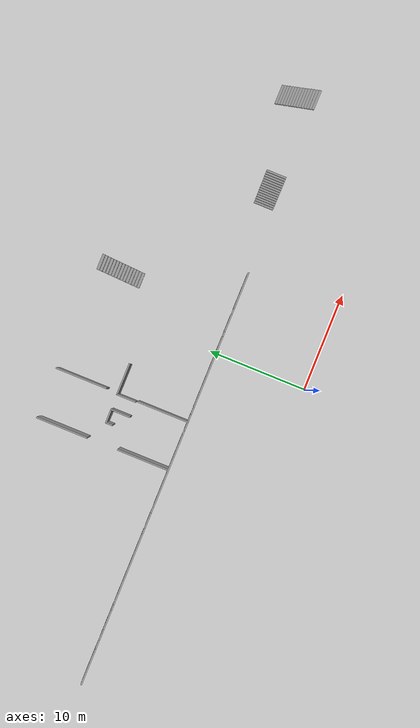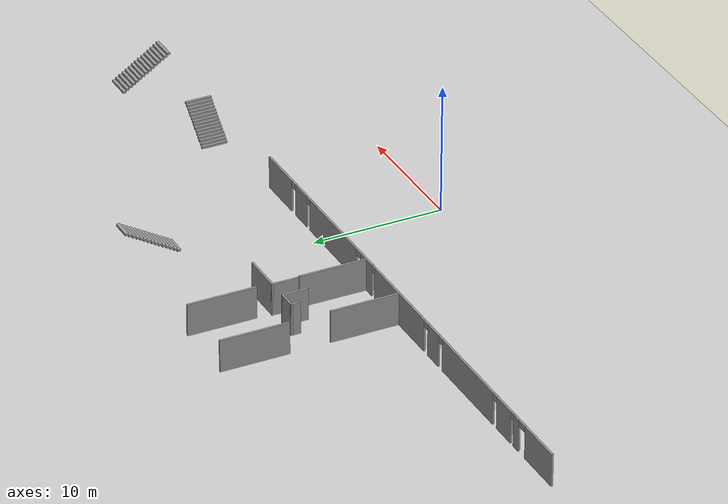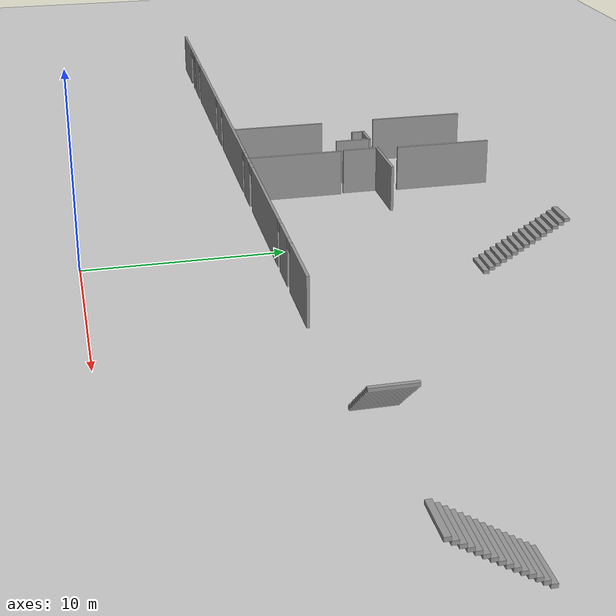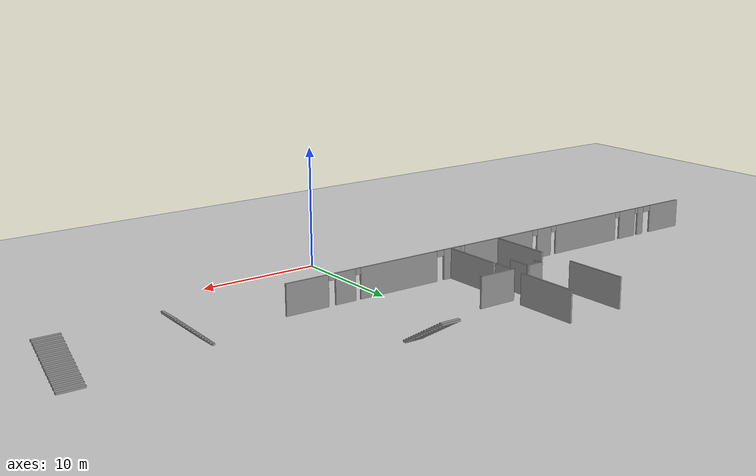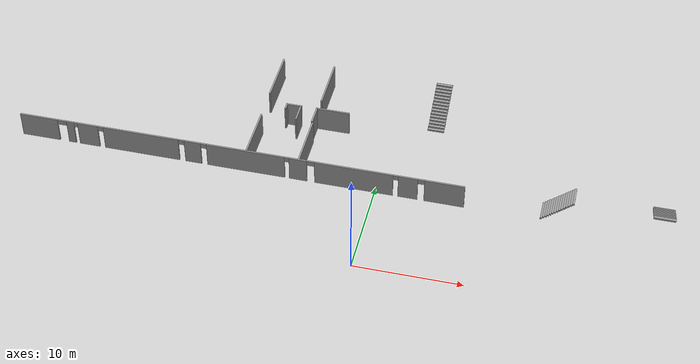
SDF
<sdf version="1.6">
 <world name="default">
  <model name="ground_plane">
   <static>1</static>
   <link name="link">
    <collision name="collision">
     <geometry><plane><normal>0 0 1</normal><size>100 100</size></plane></geometry>
     <surface><friction><ode><mu>100</mu><mu2>50</mu2></ode></friction></surface>
    </collision>
    <visual name="visual">
     <cast_shadows>0</cast_shadows>
     <geometry><plane><normal>0 0 1</normal><size>100 100</size></plane></geometry>
     <material>
      <script><uri>file://media/materials/scripts/gazebo.material</uri><name>Gazebo/Grey</name></script>
     </material>
    </visual>
   </link>
  </model>
  <model name="se1floor1">
   <pose>-5.19256 -0.852459 0 0 -0 0</pose>
   <link name="Stairs_0">
    <visual name="Stairs_0_Visual_0">
     <pose>31.172 14.058 0.083333 0 -0 0</pose>
     <geometry><box><size>1.96304 0.254734 0.166667</size></box></geometry>
     <material>
      <script><uri>file://media/materials/scripts/gazebo.material</uri><name>Gazebo/Grey</name></script>
      <ambient>1 1 1 1</ambient>
     </material>
     <meta><layer>0</layer></meta>
    </visual>
    <collision name="Stairs_0_Collision_0">
     <geometry><box><size>1.96304 0.254734 0.166667</size></box></geometry>
     <pose>31.172 14.058 0.083333 0 -0 0</pose>
    </collision>
    <visual name="Stairs_0_Visual_1">
     <pose>31.172 13.8033 0.25 0 -0 0</pose>
     <geometry><box><size>1.96304 0.254734 0.166667</size></box></geometry>
     <material>
      <script><uri>file://media/materials/scripts/gazebo.material</uri><name>Gazebo/Grey</name></script>
      <ambient>1 1 1 1</ambient>
     </material>
     <meta><layer>0</layer></meta>
    </visual>
    <collision name="Stairs_0_Collision_1">
     <geometry><box><size>1.96304 0.254734 0.166667</size></box></geometry>
     <pose>31.172 13.8033 0.25 0 -0 0</pose>
    </collision>
    <visual name="Stairs_0_Visual_2">
     <pose>31.172 13.5485 0.416667 0 -0 0</pose>
     <geometry><box><size>1.96304 0.254734 0.166667</size></box></geometry>
     <material>
      <script><uri>file://media/materials/scripts/gazebo.material</uri><name>Gazebo/Grey</name></script>
      <ambient>1 1 1 1</ambient>
     </material>
     <meta><layer>0</layer></meta>
    </visual>
    <collision name="Stairs_0_Collision_2">
     <geometry><box><size>1.96304 0.254734 0.166667</size></box></geometry>
     <pose>31.172 13.5485 0.416667 0 -0 0</pose>
    </collision>
    <visual name="Stairs_0_Visual_3">
     <pose>31.172 13.2938 0.583333 0 -0 0</pose>
     <geometry><box><size>1.96304 0.254734 0.166667</size></box></geometry>
     <material>
      <script><uri>file://media/materials/scripts/gazebo.material</uri><name>Gazebo/Grey</name></script>
      <ambient>1 1 1 1</ambient>
     </material>
     <meta><layer>0</layer></meta>
    </visual>
    <collision name="Stairs_0_Collision_3">
     <geometry><box><size>1.96304 0.254734 0.166667</size></box></geometry>
     <pose>31.172 13.2938 0.583333 0 -0 0</pose>
    </collision>
    <visual name="Stairs_0_Visual_4">
     <pose>31.172 13.0391 0.75 0 -0 0</pose>
     <geometry><box><size>1.96304 0.254734 0.166667</size></box></geometry>
     <material>
      <script><uri>file://media/materials/scripts/gazebo.material</uri><name>Gazebo/Grey</name></script>
      <ambient>1 1 1 1</ambient>
     </material>
     <meta><layer>0</layer></meta>
    </visual>
    <collision name="Stairs_0_Collision_4">
     <geometry><box><size>1.96304 0.254734 0.166667</size></box></geometry>
     <pose>31.172 13.0391 0.75 0 -0 0</pose>
    </collision>
    <visual name="Stairs_0_Visual_5">
     <pose>31.172 12.7843 0.916667 0 -0 0</pose>
     <geometry><box><size>1.96304 0.254734 0.166667</size></box></geometry>
     <material>
      <script><uri>file://media/materials/scripts/gazebo.material</uri><name>Gazebo/Grey</name></script>
      <ambient>1 1 1 1</ambient>
     </material>
     <meta><layer>0</layer></meta>
    </visual>
    <collision name="Stairs_0_Collision_5">
     <geometry><box><size>1.96304 0.254734 0.166667</size></box></geometry>
     <pose>31.172 12.7843 0.916667 0 -0 0</pose>
    </collision>
    <visual name="Stairs_0_Visual_6">
     <pose>31.172 12.5296 1.08333 0 -0 0</pose>
     <geometry><box><size>1.96304 0.254734 0.166667</size></box></geometry>
     <material>
      <script><uri>file://media/materials/scripts/gazebo.material</uri><name>Gazebo/Grey</name></script>
      <ambient>1 1 1 1</ambient>
     </material>
     <meta><layer>0</layer></meta>
    </visual>
    <collision name="Stairs_0_Collision_6">
     <geometry><box><size>1.96304 0.254734 0.166667</size></box></geometry>
     <pose>31.172 12.5296 1.08333 0 -0 0</pose>
    </collision>
    <visual name="Stairs_0_Visual_7">
     <pose>31.172 12.2749 1.25 0 -0 0</pose>
     <geometry><box><size>1.96304 0.254734 0.166667</size></box></geometry>
     <material>
      <script><uri>file://media/materials/scripts/gazebo.material</uri><name>Gazebo/Grey</name></script>
      <ambient>1 1 1 1</ambient>
     </material>
     <meta><layer>0</layer></meta>
    </visual>
    <collision name="Stairs_0_Collision_7">
     <geometry><box><size>1.96304 0.254734 0.166667</size></box></geometry>
     <pose>31.172 12.2749 1.25 0 -0 0</pose>
    </collision>
    <visual name="Stairs_0_Visual_8">
     <pose>31.172 12.0201 1.41667 0 -0 0</pose>
     <geometry><box><size>1.96304 0.254734 0.166667</size></box></geometry>
     <material>
      <script><uri>file://media/materials/scripts/gazebo.material</uri><name>Gazebo/Grey</name></script>
      <ambient>1 1 1 1</ambient>
     </material>
     <meta><layer>0</layer></meta>
    </visual>
    <collision name="Stairs_0_Collision_8">
     <geometry><box><size>1.96304 0.254734 0.166667</size></box></geometry>
     <pose>31.172 12.0201 1.41667 0 -0 0</pose>
    </collision>
    <visual name="Stairs_0_Visual_9">
     <pose>31.172 11.7654 1.58333 0 -0 0</pose>
     <geometry><box><size>1.96304 0.254734 0.166667</size></box></geometry>
     <material>
      <script><uri>file://media/materials/scripts/gazebo.material</uri><name>Gazebo/Grey</name></script>
      <ambient>1 1 1 1</ambient>
     </material>
     <meta><layer>0</layer></meta>
    </visual>
    <collision name="Stairs_0_Collision_9">
     <geometry><box><size>1.96304 0.254734 0.166667</size></box></geometry>
     <pose>31.172 11.7654 1.58333 0 -0 0</pose>
    </collision>
    <visual name="Stairs_0_Visual_10">
     <pose>31.172 11.5107 1.75 0 -0 0</pose>
     <geometry><box><size>1.96304 0.254734 0.166667</size></box></geometry>
     <material>
      <script><uri>file://media/materials/scripts/gazebo.material</uri><name>Gazebo/Grey</name></script>
      <ambient>1 1 1 1</ambient>
     </material>
     <meta><layer>0</layer></meta>
    </visual>
    <collision name="Stairs_0_Collision_10">
     <geometry><box><size>1.96304 0.254734 0.166667</size></box></geometry>
     <pose>31.172 11.5107 1.75 0 -0 0</pose>
    </collision>
    <visual name="Stairs_0_Visual_11">
     <pose>31.172 11.2559 1.91667 0 -0 0</pose>
     <geometry><box><size>1.96304 0.254734 0.166667</size></box></geometry>
     <material>
      <script><uri>file://media/materials/scripts/gazebo.material</uri><name>Gazebo/Grey</name></script>
      <ambient>1 1 1 1</ambient>
     </material>
     <meta><layer>0</layer></meta>
    </visual>
    <collision name="Stairs_0_Collision_11">
     <geometry><box><size>1.96304 0.254734 0.166667</size></box></geometry>
     <pose>31.172 11.2559 1.91667 0 -0 0</pose>
    </collision>
    <visual name="Stairs_0_Visual_12">
     <pose>31.172 11.0012 2.08333 0 -0 0</pose>
     <geometry><box><size>1.96304 0.254734 0.166667</size></box></geometry>
     <material>
      <script><uri>file://media/materials/scripts/gazebo.material</uri><name>Gazebo/Grey</name></script>
      <ambient>1 1 1 1</ambient>
     </material>
     <meta><layer>0</layer></meta>
    </visual>
    <collision name="Stairs_0_Collision_12">
     <geometry><box><size>1.96304 0.254734 0.166667</size></box></geometry>
     <pose>31.172 11.0012 2.08333 0 -0 0</pose>
    </collision>
    <visual name="Stairs_0_Visual_13">
     <pose>31.172 10.7465 2.25 0 -0 0</pose>
     <geometry><box><size>1.96304 0.254734 0.166667</size></box></geometry>
     <material>
      <script><uri>file://media/materials/scripts/gazebo.material</uri><name>Gazebo/Grey</name></script>
      <ambient>1 1 1 1</ambient>
     </material>
     <meta><layer>0</layer></meta>
    </visual>
    <collision name="Stairs_0_Collision_13">
     <geometry><box><size>1.96304 0.254734 0.166667</size></box></geometry>
     <pose>31.172 10.7465 2.25 0 -0 0</pose>
    </collision>
    <visual name="Stairs_0_Visual_14">
     <pose>31.172 10.4917 2.41667 0 -0 0</pose>
     <geometry><box><size>1.96304 0.254734 0.166667</size></box></geometry>
     <material>
      <script><uri>file://media/materials/scripts/gazebo.material</uri><name>Gazebo/Grey</name></script>
      <ambient>1 1 1 1</ambient>
     </material>
     <meta><layer>0</layer></meta>
    </visual>
    <collision name="Stairs_0_Collision_14">
     <geometry><box><size>1.96304 0.254734 0.166667</size></box></geometry>
     <pose>31.172 10.4917 2.41667 0 -0 0</pose>
    </collision>
   </link>
   <link name="Stairs_1">
    <visual name="Stairs_1_Visual_0">
     <pose>9.09407 19.8083 0.083333 0 -0 -3.14159</pose>
     <geometry><box><size>1.5586 0.281214 0.166667</size></box></geometry>
     <material>
      <script><uri>file://media/materials/scripts/gazebo.material</uri><name>Gazebo/Grey</name></script>
      <ambient>1 1 1 1</ambient>
     </material>
     <meta><layer>0</layer></meta>
    </visual>
    <collision name="Stairs_1_Collision_0">
     <geometry><box><size>1.5586 0.281214 0.166667</size></box></geometry>
     <pose>9.09407 19.8083 0.083333 0 -0 -3.14159</pose>
    </collision>
    <visual name="Stairs_1_Visual_1">
     <pose>9.09407 20.0895 0.25 0 -0 -3.14159</pose>
     <geometry><box><size>1.5586 0.281214 0.166667</size></box></geometry>
     <material>
      <script><uri>file://media/materials/scripts/gazebo.material</uri><name>Gazebo/Grey</name></script>
      <ambient>1 1 1 1</ambient>
     </material>
     <meta><layer>0</layer></meta>
    </visual>
    <collision name="Stairs_1_Collision_1">
     <geometry><box><size>1.5586 0.281214 0.166667</size></box></geometry>
     <pose>9.09407 20.0895 0.25 0 -0 -3.14159</pose>
    </collision>
    <visual name="Stairs_1_Visual_2">
     <pose>9.09407 20.3707 0.416667 0 -0 -3.14159</pose>
     <geometry><box><size>1.5586 0.281214 0.166667</size></box></geometry>
     <material>
      <script><uri>file://media/materials/scripts/gazebo.material</uri><name>Gazebo/Grey</name></script>
      <ambient>1 1 1 1</ambient>
     </material>
     <meta><layer>0</layer></meta>
    </visual>
    <collision name="Stairs_1_Collision_2">
     <geometry><box><size>1.5586 0.281214 0.166667</size></box></geometry>
     <pose>9.09407 20.3707 0.416667 0 -0 -3.14159</pose>
    </collision>
    <visual name="Stairs_1_Visual_3">
     <pose>9.09407 20.6519 0.583333 0 -0 -3.14159</pose>
     <geometry><box><size>1.5586 0.281214 0.166667</size></box></geometry>
     <material>
      <script><uri>file://media/materials/scripts/gazebo.material</uri><name>Gazebo/Grey</name></script>
      <ambient>1 1 1 1</ambient>
     </material>
     <meta><layer>0</layer></meta>
    </visual>
    <collision name="Stairs_1_Collision_3">
     <geometry><box><size>1.5586 0.281214 0.166667</size></box></geometry>
     <pose>9.09407 20.6519 0.583333 0 -0 -3.14159</pose>
    </collision>
    <visual name="Stairs_1_Visual_4">
     <pose>9.09407 20.9331 0.75 0 -0 -3.14159</pose>
     <geometry><box><size>1.5586 0.281214 0.166667</size></box></geometry>
     <material>
      <script><uri>file://media/materials/scripts/gazebo.material</uri><name>Gazebo/Grey</name></script>
      <ambient>1 1 1 1</ambient>
     </material>
     <meta><layer>0</layer></meta>
    </visual>
    <collision name="Stairs_1_Collision_4">
     <geometry><box><size>1.5586 0.281214 0.166667</size></box></geometry>
     <pose>9.09407 20.9331 0.75 0 -0 -3.14159</pose>
    </collision>
    <visual name="Stairs_1_Visual_5">
     <pose>9.09407 21.2144 0.916667 0 -0 -3.14159</pose>
     <geometry><box><size>1.5586 0.281214 0.166667</size></box></geometry>
     <material>
      <script><uri>file://media/materials/scripts/gazebo.material</uri><name>Gazebo/Grey</name></script>
      <ambient>1 1 1 1</ambient>
     </material>
     <meta><layer>0</layer></meta>
    </visual>
    <collision name="Stairs_1_Collision_5">
     <geometry><box><size>1.5586 0.281214 0.166667</size></box></geometry>
     <pose>9.09407 21.2144 0.916667 0 -0 -3.14159</pose>
    </collision>
    <visual name="Stairs_1_Visual_6">
     <pose>9.09407 21.4956 1.08333 0 -0 -3.14159</pose>
     <geometry><box><size>1.5586 0.281214 0.166667</size></box></geometry>
     <material>
      <script><uri>file://media/materials/scripts/gazebo.material</uri><name>Gazebo/Grey</name></script>
      <ambient>1 1 1 1</ambient>
     </material>
     <meta><layer>0</layer></meta>
    </visual>
    <collision name="Stairs_1_Collision_6">
     <geometry><box><size>1.5586 0.281214 0.166667</size></box></geometry>
     <pose>9.09407 21.4956 1.08333 0 -0 -3.14159</pose>
    </collision>
    <visual name="Stairs_1_Visual_7">
     <pose>9.09407 21.7768 1.25 0 -0 -3.14159</pose>
     <geometry><box><size>1.5586 0.281214 0.166667</size></box></geometry>
     <material>
      <script><uri>file://media/materials/scripts/gazebo.material</uri><name>Gazebo/Grey</name></script>
      <ambient>1 1 1 1</ambient>
     </material>
     <meta><layer>0</layer></meta>
    </visual>
    <collision name="Stairs_1_Collision_7">
     <geometry><box><size>1.5586 0.281214 0.166667</size></box></geometry>
     <pose>9.09407 21.7768 1.25 0 -0 -3.14159</pose>
    </collision>
    <visual name="Stairs_1_Visual_8">
     <pose>9.09407 22.058 1.41667 0 -0 -3.14159</pose>
     <geometry><box><size>1.5586 0.281214 0.166667</size></box></geometry>
     <material>
      <script><uri>file://media/materials/scripts/gazebo.material</uri><name>Gazebo/Grey</name></script>
      <ambient>1 1 1 1</ambient>
     </material>
     <meta><layer>0</layer></meta>
    </visual>
    <collision name="Stairs_1_Collision_8">
     <geometry><box><size>1.5586 0.281214 0.166667</size></box></geometry>
     <pose>9.09407 22.058 1.41667 0 -0 -3.14159</pose>
    </collision>
    <visual name="Stairs_1_Visual_9">
     <pose>9.09407 22.3392 1.58333 0 -0 -3.14159</pose>
     <geometry><box><size>1.5586 0.281214 0.166667</size></box></geometry>
     <material>
      <script><uri>file://media/materials/scripts/gazebo.material</uri><name>Gazebo/Grey</name></script>
      <ambient>1 1 1 1</ambient>
     </material>
     <meta><layer>0</layer></meta>
    </visual>
    <collision name="Stairs_1_Collision_9">
     <geometry><box><size>1.5586 0.281214 0.166667</size></box></geometry>
     <pose>9.09407 22.3392 1.58333 0 -0 -3.14159</pose>
    </collision>
    <visual name="Stairs_1_Visual_10">
     <pose>9.09407 22.6204 1.75 0 -0 -3.14159</pose>
     <geometry><box><size>1.5586 0.281214 0.166667</size></box></geometry>
     <material>
      <script><uri>file://media/materials/scripts/gazebo.material</uri><name>Gazebo/Grey</name></script>
      <ambient>1 1 1 1</ambient>
     </material>
     <meta><layer>0</layer></meta>
    </visual>
    <collision name="Stairs_1_Collision_10">
     <geometry><box><size>1.5586 0.281214 0.166667</size></box></geometry>
     <pose>9.09407 22.6204 1.75 0 -0 -3.14159</pose>
    </collision>
    <visual name="Stairs_1_Visual_11">
     <pose>9.09407 22.9016 1.91667 0 -0 -3.14159</pose>
     <geometry><box><size>1.5586 0.281214 0.166667</size></box></geometry>
     <material>
      <script><uri>file://media/materials/scripts/gazebo.material</uri><name>Gazebo/Grey</name></script>
      <ambient>1 1 1 1</ambient>
     </material>
     <meta><layer>0</layer></meta>
    </visual>
    <collision name="Stairs_1_Collision_11">
     <geometry><box><size>1.5586 0.281214 0.166667</size></box></geometry>
     <pose>9.09407 22.9016 1.91667 0 -0 -3.14159</pose>
    </collision>
    <visual name="Stairs_1_Visual_12">
     <pose>9.09407 23.1829 2.08333 0 -0 -3.14159</pose>
     <geometry><box><size>1.5586 0.281214 0.166667</size></box></geometry>
     <material>
      <script><uri>file://media/materials/scripts/gazebo.material</uri><name>Gazebo/Grey</name></script>
      <ambient>1 1 1 1</ambient>
     </material>
     <meta><layer>0</layer></meta>
    </visual>
    <collision name="Stairs_1_Collision_12">
     <geometry><box><size>1.5586 0.281214 0.166667</size></box></geometry>
     <pose>9.09407 23.1829 2.08333 0 -0 -3.14159</pose>
    </collision>
    <visual name="Stairs_1_Visual_13">
     <pose>9.09407 23.4641 2.25 0 -0 -3.14159</pose>
     <geometry><box><size>1.5586 0.281214 0.166667</size></box></geometry>
     <material>
      <script><uri>file://media/materials/scripts/gazebo.material</uri><name>Gazebo/Grey</name></script>
      <ambient>1 1 1 1</ambient>
     </material>
     <meta><layer>0</layer></meta>
    </visual>
    <collision name="Stairs_1_Collision_13">
     <geometry><box><size>1.5586 0.281214 0.166667</size></box></geometry>
     <pose>9.09407 23.4641 2.25 0 -0 -3.14159</pose>
    </collision>
    <visual name="Stairs_1_Visual_14">
     <pose>9.09407 23.7453 2.41667 0 -0 -3.14159</pose>
     <geometry><box><size>1.5586 0.281214 0.166667</size></box></geometry>
     <material>
      <script><uri>file://media/materials/scripts/gazebo.material</uri><name>Gazebo/Grey</name></script>
      <ambient>1 1 1 1</ambient>
     </material>
     <meta><layer>0</layer></meta>
    </visual>
    <collision name="Stairs_1_Collision_14">
     <geometry><box><size>1.5586 0.281214 0.166667</size></box></geometry>
     <pose>9.09407 23.7453 2.41667 0 -0 -3.14159</pose>
    </collision>
   </link>
   <link name="Stairs_2">
    <visual name="Stairs_2_Visual_0">
     <pose>20.4775 11.3856 0.083333 0 -0 1.5708</pose>
     <geometry><box><size>2.01727 0.190773 0.166667</size></box></geometry>
     <material>
      <script><uri>file://media/materials/scripts/gazebo.material</uri><name>Gazebo/Grey</name></script>
      <ambient>1 1 1 1</ambient>
     </material>
     <meta><layer>0</layer></meta>
    </visual>
    <collision name="Stairs_2_Collision_0">
     <geometry><box><size>2.01727 0.190773 0.166667</size></box></geometry>
     <pose>20.4775 11.3856 0.083333 0 -0 1.5708</pose>
    </collision>
    <visual name="Stairs_2_Visual_1">
     <pose>20.6683 11.3856 0.25 0 -0 1.5708</pose>
     <geometry><box><size>2.01727 0.190773 0.166667</size></box></geometry>
     <material>
      <script><uri>file://media/materials/scripts/gazebo.material</uri><name>Gazebo/Grey</name></script>
      <ambient>1 1 1 1</ambient>
     </material>
     <meta><layer>0</layer></meta>
    </visual>
    <collision name="Stairs_2_Collision_1">
     <geometry><box><size>2.01727 0.190773 0.166667</size></box></geometry>
     <pose>20.6683 11.3856 0.25 0 -0 1.5708</pose>
    </collision>
    <visual name="Stairs_2_Visual_2">
     <pose>20.8591 11.3856 0.416667 0 -0 1.5708</pose>
     <geometry><box><size>2.01727 0.190773 0.166667</size></box></geometry>
     <material>
      <script><uri>file://media/materials/scripts/gazebo.material</uri><name>Gazebo/Grey</name></script>
      <ambient>1 1 1 1</ambient>
     </material>
     <meta><layer>0</layer></meta>
    </visual>
    <collision name="Stairs_2_Collision_2">
     <geometry><box><size>2.01727 0.190773 0.166667</size></box></geometry>
     <pose>20.8591 11.3856 0.416667 0 -0 1.5708</pose>
    </collision>
    <visual name="Stairs_2_Visual_3">
     <pose>21.0498 11.3856 0.583333 0 -0 1.5708</pose>
     <geometry><box><size>2.01727 0.190773 0.166667</size></box></geometry>
     <material>
      <script><uri>file://media/materials/scripts/gazebo.material</uri><name>Gazebo/Grey</name></script>
      <ambient>1 1 1 1</ambient>
     </material>
     <meta><layer>0</layer></meta>
    </visual>
    <collision name="Stairs_2_Collision_3">
     <geometry><box><size>2.01727 0.190773 0.166667</size></box></geometry>
     <pose>21.0498 11.3856 0.583333 0 -0 1.5708</pose>
    </collision>
    <visual name="Stairs_2_Visual_4">
     <pose>21.2406 11.3856 0.75 0 -0 1.5708</pose>
     <geometry><box><size>2.01727 0.190773 0.166667</size></box></geometry>
     <material>
      <script><uri>file://media/materials/scripts/gazebo.material</uri><name>Gazebo/Grey</name></script>
      <ambient>1 1 1 1</ambient>
     </material>
     <meta><layer>0</layer></meta>
    </visual>
    <collision name="Stairs_2_Collision_4">
     <geometry><box><size>2.01727 0.190773 0.166667</size></box></geometry>
     <pose>21.2406 11.3856 0.75 0 -0 1.5708</pose>
    </collision>
    <visual name="Stairs_2_Visual_5">
     <pose>21.4314 11.3856 0.916667 0 -0 1.5708</pose>
     <geometry><box><size>2.01727 0.190773 0.166667</size></box></geometry>
     <material>
      <script><uri>file://media/materials/scripts/gazebo.material</uri><name>Gazebo/Grey</name></script>
      <ambient>1 1 1 1</ambient>
     </material>
     <meta><layer>0</layer></meta>
    </visual>
    <collision name="Stairs_2_Collision_5">
     <geometry><box><size>2.01727 0.190773 0.166667</size></box></geometry>
     <pose>21.4314 11.3856 0.916667 0 -0 1.5708</pose>
    </collision>
    <visual name="Stairs_2_Visual_6">
     <pose>21.6222 11.3856 1.08333 0 -0 1.5708</pose>
     <geometry><box><size>2.01727 0.190773 0.166667</size></box></geometry>
     <material>
      <script><uri>file://media/materials/scripts/gazebo.material</uri><name>Gazebo/Grey</name></script>
      <ambient>1 1 1 1</ambient>
     </material>
     <meta><layer>0</layer></meta>
    </visual>
    <collision name="Stairs_2_Collision_6">
     <geometry><box><size>2.01727 0.190773 0.166667</size></box></geometry>
     <pose>21.6222 11.3856 1.08333 0 -0 1.5708</pose>
    </collision>
    <visual name="Stairs_2_Visual_7">
     <pose>21.8129 11.3856 1.25 0 -0 1.5708</pose>
     <geometry><box><size>2.01727 0.190773 0.166667</size></box></geometry>
     <material>
      <script><uri>file://media/materials/scripts/gazebo.material</uri><name>Gazebo/Grey</name></script>
      <ambient>1 1 1 1</ambient>
     </material>
     <meta><layer>0</layer></meta>
    </visual>
    <collision name="Stairs_2_Collision_7">
     <geometry><box><size>2.01727 0.190773 0.166667</size></box></geometry>
     <pose>21.8129 11.3856 1.25 0 -0 1.5708</pose>
    </collision>
    <visual name="Stairs_2_Visual_8">
     <pose>22.0037 11.3856 1.41667 0 -0 1.5708</pose>
     <geometry><box><size>2.01727 0.190773 0.166667</size></box></geometry>
     <material>
      <script><uri>file://media/materials/scripts/gazebo.material</uri><name>Gazebo/Grey</name></script>
      <ambient>1 1 1 1</ambient>
     </material>
     <meta><layer>0</layer></meta>
    </visual>
    <collision name="Stairs_2_Collision_8">
     <geometry><box><size>2.01727 0.190773 0.166667</size></box></geometry>
     <pose>22.0037 11.3856 1.41667 0 -0 1.5708</pose>
    </collision>
    <visual name="Stairs_2_Visual_9">
     <pose>22.1945 11.3856 1.58333 0 -0 1.5708</pose>
     <geometry><box><size>2.01727 0.190773 0.166667</size></box></geometry>
     <material>
      <script><uri>file://media/materials/scripts/gazebo.material</uri><name>Gazebo/Grey</name></script>
      <ambient>1 1 1 1</ambient>
     </material>
     <meta><layer>0</layer></meta>
    </visual>
    <collision name="Stairs_2_Collision_9">
     <geometry><box><size>2.01727 0.190773 0.166667</size></box></geometry>
     <pose>22.1945 11.3856 1.58333 0 -0 1.5708</pose>
    </collision>
    <visual name="Stairs_2_Visual_10">
     <pose>22.3853 11.3856 1.75 0 -0 1.5708</pose>
     <geometry><box><size>2.01727 0.190773 0.166667</size></box></geometry>
     <material>
      <script><uri>file://media/materials/scripts/gazebo.material</uri><name>Gazebo/Grey</name></script>
      <ambient>1 1 1 1</ambient>
     </material>
     <meta><layer>0</layer></meta>
    </visual>
    <collision name="Stairs_2_Collision_10">
     <geometry><box><size>2.01727 0.190773 0.166667</size></box></geometry>
     <pose>22.3853 11.3856 1.75 0 -0 1.5708</pose>
    </collision>
    <visual name="Stairs_2_Visual_11">
     <pose>22.576 11.3856 1.91667 0 -0 1.5708</pose>
     <geometry><box><size>2.01727 0.190773 0.166667</size></box></geometry>
     <material>
      <script><uri>file://media/materials/scripts/gazebo.material</uri><name>Gazebo/Grey</name></script>
      <ambient>1 1 1 1</ambient>
     </material>
     <meta><layer>0</layer></meta>
    </visual>
    <collision name="Stairs_2_Collision_11">
     <geometry><box><size>2.01727 0.190773 0.166667</size></box></geometry>
     <pose>22.576 11.3856 1.91667 0 -0 1.5708</pose>
    </collision>
    <visual name="Stairs_2_Visual_12">
     <pose>22.7668 11.3856 2.08333 0 -0 1.5708</pose>
     <geometry><box><size>2.01727 0.190773 0.166667</size></box></geometry>
     <material>
      <script><uri>file://media/materials/scripts/gazebo.material</uri><name>Gazebo/Grey</name></script>
      <ambient>1 1 1 1</ambient>
     </material>
     <meta><layer>0</layer></meta>
    </visual>
    <collision name="Stairs_2_Collision_12">
     <geometry><box><size>2.01727 0.190773 0.166667</size></box></geometry>
     <pose>22.7668 11.3856 2.08333 0 -0 1.5708</pose>
    </collision>
    <visual name="Stairs_2_Visual_13">
     <pose>22.9576 11.3856 2.25 0 -0 1.5708</pose>
     <geometry><box><size>2.01727 0.190773 0.166667</size></box></geometry>
     <material>
      <script><uri>file://media/materials/scripts/gazebo.material</uri><name>Gazebo/Grey</name></script>
      <ambient>1 1 1 1</ambient>
     </material>
     <meta><layer>0</layer></meta>
    </visual>
    <collision name="Stairs_2_Collision_13">
     <geometry><box><size>2.01727 0.190773 0.166667</size></box></geometry>
     <pose>22.9576 11.3856 2.25 0 -0 1.5708</pose>
    </collision>
    <visual name="Stairs_2_Visual_14">
     <pose>23.1484 11.3856 2.41667 0 -0 1.5708</pose>
     <geometry><box><size>2.01727 0.190773 0.166667</size></box></geometry>
     <material>
      <script><uri>file://media/materials/scripts/gazebo.material</uri><name>Gazebo/Grey</name></script>
      <ambient>1 1 1 1</ambient>
     </material>
     <meta><layer>0</layer></meta>
    </visual>
    <collision name="Stairs_2_Collision_14">
     <geometry><box><size>2.01727 0.190773 0.166667</size></box></geometry>
     <pose>23.1484 11.3856 2.41667 0 -0 1.5708</pose>
    </collision>
   </link>
   <link name="Wall_20">
    <pose>-7.78282 10.2953 0 0 -0 0</pose>
    <visual name="Wall_20_Visual_0">
     <pose>-19.3949 0 1.25 0 -0 0</pose>
     <geometry><box><size>3.71017 0.15 2.5</size></box></geometry>
     <material>
      <script><uri>file://media/materials/scripts/gazebo.material</uri><name>Gazebo/Grey</name></script>
      <ambient>1 1 1 1</ambient>
     </material>
     <meta><layer>0</layer></meta>
    </visual>
    <collision name="Wall_20_Collision_0">
     <geometry><box><size>3.71017 0.15 2.5</size></box></geometry>
     <pose>-19.3949 0 1.25 0 -0 0</pose>
    </collision>
    <visual name="Wall_20_Visual_1">
     <pose>-16.2807 0 1.25 0 -0 0</pose>
     <geometry><box><size>0.718224 0.15 2.5</size></box></geometry>
     <material>
      <script><uri>file://media/materials/scripts/gazebo.material</uri><name>Gazebo/Grey</name></script>
      <ambient>1 1 1 1</ambient>
     </material>
     <meta><layer>0</layer></meta>
    </visual>
    <collision name="Wall_20_Collision_1">
     <geometry><box><size>0.718224 0.15 2.5</size></box></geometry>
     <pose>-16.2807 0 1.25 0 -0 0</pose>
    </collision>
    <visual name="Wall_20_Visual_2">
     <pose>-14.5512 0 1.25 0 -0 0</pose>
     <geometry><box><size>1.99257 0.15 2.5</size></box></geometry>
     <material>
      <script><uri>file://media/materials/scripts/gazebo.material</uri><name>Gazebo/Grey</name></script>
      <ambient>1 1 1 1</ambient>
     </material>
     <meta><layer>0</layer></meta>
    </visual>
    <collision name="Wall_20_Collision_2">
     <geometry><box><size>1.99257 0.15 2.5</size></box></geometry>
     <pose>-14.5512 0 1.25 0 -0 0</pose>
    </collision>
    <visual name="Wall_20_Visual_3">
     <pose>-9.34259 0 1.25 0 -0 0</pose>
     <geometry><box><size>7.35294 0.15 2.5</size></box></geometry>
     <material>
      <script><uri>file://media/materials/scripts/gazebo.material</uri><name>Gazebo/Grey</name></script>
      <ambient>1 1 1 1</ambient>
     </material>
     <meta><layer>0</layer></meta>
    </visual>
    <collision name="Wall_20_Collision_3">
     <geometry><box><size>7.35294 0.15 2.5</size></box></geometry>
     <pose>-9.34259 0 1.25 0 -0 0</pose>
    </collision>
    <visual name="Wall_20_Visual_4">
     <pose>-4.29765 0 1.25 0 -0 0</pose>
     <geometry><box><size>1.58424 0.15 2.5</size></box></geometry>
     <material>
      <script><uri>file://media/materials/scripts/gazebo.material</uri><name>Gazebo/Grey</name></script>
      <ambient>1 1 1 1</ambient>
     </material>
     <meta><layer>0</layer></meta>
    </visual>
    <collision name="Wall_20_Collision_4">
     <geometry><box><size>1.58424 0.15 2.5</size></box></geometry>
     <pose>-4.29765 0 1.25 0 -0 0</pose>
    </collision>
    <visual name="Wall_20_Visual_5">
     <pose>0.780372 0 1.25 0 -0 0</pose>
     <geometry><box><size>7.45233 0.15 2.5</size></box></geometry>
     <material>
      <script><uri>file://media/materials/scripts/gazebo.material</uri><name>Gazebo/Grey</name></script>
      <ambient>1 1 1 1</ambient>
     </material>
     <meta><layer>0</layer></meta>
    </visual>
    <collision name="Wall_20_Collision_5">
     <geometry><box><size>7.45233 0.15 2.5</size></box></geometry>
     <pose>0.780372 0 1.25 0 -0 0</pose>
    </collision>
    <visual name="Wall_20_Visual_6">
     <pose>5.78234 0 1.25 0 -0 0</pose>
     <geometry><box><size>1.68208 0.15 2.5</size></box></geometry>
     <material>
      <script><uri>file://media/materials/scripts/gazebo.material</uri><name>Gazebo/Grey</name></script>
      <ambient>1 1 1 1</ambient>
     </material>
     <meta><layer>0</layer></meta>
    </visual>
    <collision name="Wall_20_Collision_6">
     <geometry><box><size>1.68208 0.15 2.5</size></box></geometry>
     <pose>5.78234 0 1.25 0 -0 0</pose>
    </collision>
    <visual name="Wall_20_Visual_7">
     <pose>11.0046 0 1.25 0 -0 0</pose>
     <geometry><box><size>7.33473 0.15 2.5</size></box></geometry>
     <material>
      <script><uri>file://media/materials/scripts/gazebo.material</uri><name>Gazebo/Grey</name></script>
      <ambient>1 1 1 1</ambient>
     </material>
     <meta><layer>0</layer></meta>
    </visual>
    <collision name="Wall_20_Collision_7">
     <geometry><box><size>7.33473 0.15 2.5</size></box></geometry>
     <pose>11.0046 0 1.25 0 -0 0</pose>
    </collision>
    <visual name="Wall_20_Visual_8">
     <pose>16.0525 0 1.25 0 -0 0</pose>
     <geometry><box><size>1.79839 0.15 2.5</size></box></geometry>
     <material>
      <script><uri>file://media/materials/scripts/gazebo.material</uri><name>Gazebo/Grey</name></script>
      <ambient>1 1 1 1</ambient>
     </material>
     <meta><layer>0</layer></meta>
    </visual>
    <collision name="Wall_20_Collision_8">
     <geometry><box><size>1.79839 0.15 2.5</size></box></geometry>
     <pose>16.0525 0 1.25 0 -0 0</pose>
    </collision>
    <visual name="Wall_20_Visual_9">
     <pose>19.4113 0 1.25 0 -0 0</pose>
     <geometry><box><size>3.67746 0.15 2.5</size></box></geometry>
     <material>
      <script><uri>file://media/materials/scripts/gazebo.material</uri><name>Gazebo/Grey</name></script>
      <ambient>1 1 1 1</ambient>
     </material>
     <meta><layer>0</layer></meta>
    </visual>
    <collision name="Wall_20_Collision_9">
     <geometry><box><size>3.67746 0.15 2.5</size></box></geometry>
     <pose>19.4113 0 1.25 0 -0 0</pose>
    </collision>
    <visual name="Wall_20_Visual_10">
     <pose>-17.0898 0 2.25 0 -0 0</pose>
     <geometry><box><size>0.9 0.15 0.5</size></box></geometry>
     <material>
      <script><uri>file://media/materials/scripts/gazebo.material</uri><name>Gazebo/Grey</name></script>
      <ambient>1 1 1 1</ambient>
     </material>
     <meta><layer>0</layer></meta>
    </visual>
    <collision name="Wall_20_Collision_10">
     <geometry><box><size>0.9 0.15 0.5</size></box></geometry>
     <pose>-17.0898 0 2.25 0 -0 0</pose>
    </collision>
    <visual name="Wall_20_Visual_11">
     <pose>-15.7346 0 2.25 0 -0 0</pose>
     <geometry><box><size>0.374077 0.15 0.5</size></box></geometry>
     <material>
      <script><uri>file://media/materials/scripts/gazebo.material</uri><name>Gazebo/Grey</name></script>
      <ambient>1 1 1 1</ambient>
     </material>
     <meta><layer>0</layer></meta>
    </visual>
    <collision name="Wall_20_Collision_11">
     <geometry><box><size>0.374077 0.15 0.5</size></box></geometry>
     <pose>-15.7346 0 2.25 0 -0 0</pose>
    </collision>
    <visual name="Wall_20_Visual_12">
     <pose>-13.287 0 2.25 0 -0 0</pose>
     <geometry><box><size>0.5359 0.15 0.5</size></box></geometry>
     <material>
      <script><uri>file://media/materials/scripts/gazebo.material</uri><name>Gazebo/Grey</name></script>
      <ambient>1 1 1 1</ambient>
     </material>
     <meta><layer>0</layer></meta>
    </visual>
    <collision name="Wall_20_Collision_12">
     <geometry><box><size>0.5359 0.15 0.5</size></box></geometry>
     <pose>-13.287 0 2.25 0 -0 0</pose>
    </collision>
    <visual name="Wall_20_Visual_13">
     <pose>-5.37794 0 2.25 0 -0 0</pose>
     <geometry><box><size>0.576355 0.15 0.5</size></box></geometry>
     <material>
      <script><uri>file://media/materials/scripts/gazebo.material</uri><name>Gazebo/Grey</name></script>
      <ambient>1 1 1 1</ambient>
     </material>
     <meta><layer>0</layer></meta>
    </visual>
    <collision name="Wall_20_Collision_13">
     <geometry><box><size>0.576355 0.15 0.5</size></box></geometry>
     <pose>-5.37794 0 2.25 0 -0 0</pose>
    </collision>
    <visual name="Wall_20_Visual_14">
     <pose>-3.22566 0 2.25 0 -0 0</pose>
     <geometry><box><size>0.559735 0.15 0.5</size></box></geometry>
     <material>
      <script><uri>file://media/materials/scripts/gazebo.material</uri><name>Gazebo/Grey</name></script>
      <ambient>1 1 1 1</ambient>
     </material>
     <meta><layer>0</layer></meta>
    </visual>
    <collision name="Wall_20_Collision_14">
     <geometry><box><size>0.559735 0.15 0.5</size></box></geometry>
     <pose>-3.22566 0 2.25 0 -0 0</pose>
    </collision>
    <visual name="Wall_20_Visual_15">
     <pose>4.72392 0 2.25 0 -0 0</pose>
     <geometry><box><size>0.434761 0.15 0.5</size></box></geometry>
     <material>
      <script><uri>file://media/materials/scripts/gazebo.material</uri><name>Gazebo/Grey</name></script>
      <ambient>1 1 1 1</ambient>
     </material>
     <meta><layer>0</layer></meta>
    </visual>
    <collision name="Wall_20_Collision_15">
     <geometry><box><size>0.434761 0.15 0.5</size></box></geometry>
     <pose>4.72392 0 2.25 0 -0 0</pose>
    </collision>
    <visual name="Wall_20_Visual_16">
     <pose>6.98033 0 2.25 0 -0 0</pose>
     <geometry><box><size>0.713904 0.15 0.5</size></box></geometry>
     <material>
      <script><uri>file://media/materials/scripts/gazebo.material</uri><name>Gazebo/Grey</name></script>
      <ambient>1 1 1 1</ambient>
     </material>
     <meta><layer>0</layer></meta>
    </visual>
    <collision name="Wall_20_Collision_16">
     <geometry><box><size>0.713904 0.15 0.5</size></box></geometry>
     <pose>6.98033 0 2.25 0 -0 0</pose>
    </collision>
    <visual name="Wall_20_Visual_17">
     <pose>14.9127 0 2.25 0 -0 0</pose>
     <geometry><box><size>0.481285 0.15 0.5</size></box></geometry>
     <material>
      <script><uri>file://media/materials/scripts/gazebo.material</uri><name>Gazebo/Grey</name></script>
      <ambient>1 1 1 1</ambient>
     </material>
     <meta><layer>0</layer></meta>
    </visual>
    <collision name="Wall_20_Collision_17">
     <geometry><box><size>0.481285 0.15 0.5</size></box></geometry>
     <pose>14.9127 0 2.25 0 -0 0</pose>
    </collision>
    <visual name="Wall_20_Visual_18">
     <pose>17.2621 0 2.25 0 -0 0</pose>
     <geometry><box><size>0.620857 0.15 0.5</size></box></geometry>
     <material>
      <script><uri>file://media/materials/scripts/gazebo.material</uri><name>Gazebo/Grey</name></script>
      <ambient>1 1 1 1</ambient>
     </material>
     <meta><layer>0</layer></meta>
    </visual>
    <collision name="Wall_20_Collision_18">
     <geometry><box><size>0.620857 0.15 0.5</size></box></geometry>
     <pose>17.2621 0 2.25 0 -0 0</pose>
    </collision>
   </link>
   <link name="Wall_32">
    <collision name="Wall_32_Collision">
     <geometry><box><size>3.25 0.15 2.5</size></box></geometry>
     <pose>0 0 1.25 0 -0 0</pose>
    </collision>
    <visual name="Wall_32_Visual">
     <pose>0 0 1.25 0 -0 0</pose>
     <geometry><box><size>3.25 0.15 2.5</size></box></geometry>
     <material>
      <script><uri>file://media/materials/scripts/gazebo.material</uri><name>Gazebo/Grey</name></script>
      <ambient>1 1 1 1</ambient>
     </material>
     <meta><layer>0</layer></meta>
    </visual>
    <pose>-0.492923 17.5575 0 0 -0 3.14159</pose>
   </link>
   <link name="Wall_33">
    <collision name="Wall_33_Collision">
     <geometry><box><size>2 0.15 2.5</size></box></geometry>
     <pose>0 0 1.25 0 -0 0</pose>
    </collision>
    <visual name="Wall_33_Visual">
     <pose>0 0 1.25 0 -0 0</pose>
     <geometry><box><size>2 0.15 2.5</size></box></geometry>
     <material>
      <script><uri>file://media/materials/scripts/gazebo.material</uri><name>Gazebo/Grey</name></script>
      <ambient>1 1 1 1</ambient>
     </material>
     <meta><layer>0</layer></meta>
    </visual>
    <pose>-2.04292 16.6325 0 0 0 -1.5708</pose>
   </link>
   <link name="Wall_35">
    <collision name="Wall_35_Collision">
     <geometry><box><size>2 0.15 2.5</size></box></geometry>
     <pose>0 0 1.25 0 -0 0</pose>
    </collision>
    <visual name="Wall_35_Visual">
     <pose>0 0 1.25 0 -0 0</pose>
     <geometry><box><size>2 0.15 2.5</size></box></geometry>
     <material>
      <script><uri>file://media/materials/scripts/gazebo.material</uri><name>Gazebo/Grey</name></script>
      <ambient>1 1 1 1</ambient>
     </material>
     <meta><layer>0</layer></meta>
    </visual>
    <pose>-3.59764 16.5984 0 0 -0 1.5708</pose>
   </link>
   <link name="Wall_36">
    <collision name="Wall_36_Collision">
     <geometry><box><size>1.5 0.15 2.5</size></box></geometry>
     <pose>0 0 1.25 0 -0 0</pose>
    </collision>
    <visual name="Wall_36_Visual">
     <pose>0 0 1.25 0 -0 0</pose>
     <geometry><box><size>1.5 0.15 2.5</size></box></geometry>
     <material>
      <script><uri>file://media/materials/scripts/gazebo.material</uri><name>Gazebo/Grey</name></script>
      <ambient>1 1 1 1</ambient>
     </material>
     <meta><layer>0</layer></meta>
    </visual>
    <pose>-4.27264 17.5234 0 0 -0 3.14159</pose>
   </link>
   <link name="Wall_37">
    <collision name="Wall_37_Collision">
     <geometry><box><size>0.75 0.15 2.5</size></box></geometry>
     <pose>0 0 1.25 0 -0 0</pose>
    </collision>
    <visual name="Wall_37_Visual">
     <pose>0 0 1.25 0 -0 0</pose>
     <geometry><box><size>0.75 0.15 2.5</size></box></geometry>
     <material>
      <script><uri>file://media/materials/scripts/gazebo.material</uri><name>Gazebo/Grey</name></script>
      <ambient>1 1 1 1</ambient>
     </material>
     <meta><layer>0</layer></meta>
    </visual>
    <pose>-4.94764 17.2234 0 0 0 -1.5708</pose>
   </link>
   <link name="Wall_47">
    <collision name="Wall_47_Collision">
     <geometry><box><size>5.25 0.15 2.5</size></box></geometry>
     <pose>0 0 1.25 0 -0 0</pose>
    </collision>
    <visual name="Wall_47_Visual">
     <pose>0 0 1.25 0 -0 0</pose>
     <geometry><box><size>5.25 0.15 2.5</size></box></geometry>
     <material>
      <script><uri>file://media/materials/scripts/gazebo.material</uri><name>Gazebo/Grey</name></script>
      <ambient>1 1 1 1</ambient>
     </material>
     <meta><layer>0</layer></meta>
    </visual>
    <pose>-1.93906 12.8559 0 0 0 -1.5708</pose>
   </link>
   <link name="Wall_49">
    <collision name="Wall_49_Collision">
     <geometry><box><size>5.25 0.15 2.5</size></box></geometry>
     <pose>0 0 1.25 0 -0 0</pose>
    </collision>
    <visual name="Wall_49_Visual">
     <pose>0 0 1.25 0 -0 0</pose>
     <geometry><box><size>5.25 0.15 2.5</size></box></geometry>
     <material>
      <script><uri>file://media/materials/scripts/gazebo.material</uri><name>Gazebo/Grey</name></script>
      <ambient>1 1 1 1</ambient>
     </material>
     <meta><layer>0</layer></meta>
    </visual>
    <pose>-6.91479 12.9094 0 0 0 -1.5708</pose>
   </link>
   <link name="Wall_88">
    <collision name="Wall_88_Collision">
     <geometry><box><size>5.25 0.15 2.5</size></box></geometry>
     <pose>0 0 1.25 0 -0 0</pose>
    </collision>
    <visual name="Wall_88_Visual">
     <pose>0 0 1.25 0 -0 0</pose>
     <geometry><box><size>5.25 0.15 2.5</size></box></geometry>
     <material>
      <script><uri>file://media/materials/scripts/gazebo.material</uri><name>Gazebo/Grey</name></script>
      <ambient>1 1 1 1</ambient>
     </material>
     <meta><layer>0</layer></meta>
    </visual>
    <pose>-6.9683 21.2558 0 0 0 -1.5708</pose>
   </link>
   <link name="Wall_90">
    <collision name="Wall_90_Collision">
     <geometry><box><size>5.25 0.15 2.5</size></box></geometry>
     <pose>0 0 1.25 0 -0 0</pose>
    </collision>
    <visual name="Wall_90_Visual">
     <pose>0 0 1.25 0 -0 0</pose>
     <geometry><box><size>5.25 0.15 2.5</size></box></geometry>
     <material>
      <script><uri>file://media/materials/scripts/gazebo.material</uri><name>Gazebo/Grey</name></script>
      <ambient>1 1 1 1</ambient>
     </material>
     <meta><layer>0</layer></meta>
    </visual>
    <pose>-1.88556 21.3093 0 0 0 -1.5708</pose>
   </link>
   <static>1</static>
  </model>
 </world>
</sdf>
